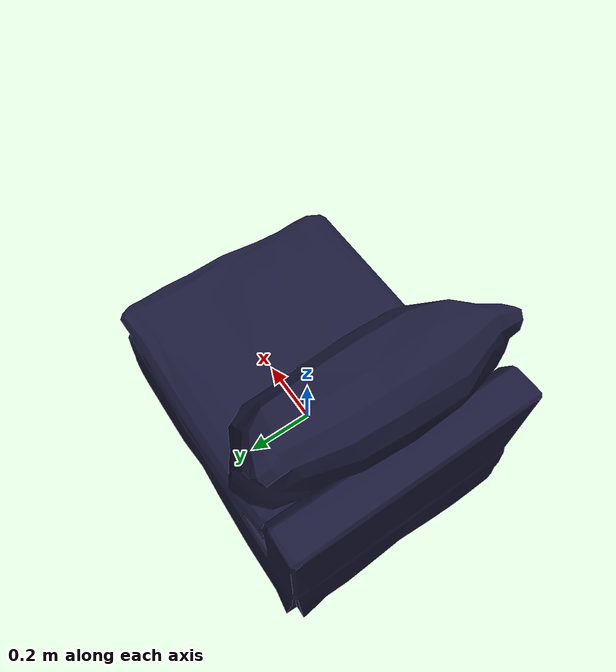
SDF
<?xml version='1.0' ?>
<sdf version='1.6'>
  <model name='lounge_chair'>
    <static>false</static>
    <link name='link'>
      <collision name='collision'>
        <pose>-0 0 0 0 0 1.570796</pose>
        <geometry>
          <mesh>
            <uri>model://volta_simulation/models/lounge_chair/meshes/lounge_chair.dae</uri>
          </mesh>
        </geometry>
        <surface>
          <friction>
            <ode>
              <mu>100</mu>
              <mu2>50</mu2>
            </ode>
          </friction>
        </surface>
      </collision>
      <visual name='visual'>
        <pose>-0 0 0 0 0 1.570796</pose>
        <geometry>
          <mesh>
            <uri>model://volta_simulation/models/lounge_chair/meshes/lounge_chair.dae</uri>
          </mesh>
        </geometry>
     </visual>
      <inertial>
        <pose>-0.1 0 0.3 0 0 0</pose>
        <mass>15</mass>
        <inertia>
          <ixx>2.1 </ixx>
          <iyy>2.1 </iyy>
          <izz>2.0</izz>
          <ixy>0</ixy>
          <ixz>0.25</ixz>
          <iyz>0</iyz>
        </inertia>
      </inertial>
    </link>
  </model>
</sdf>
